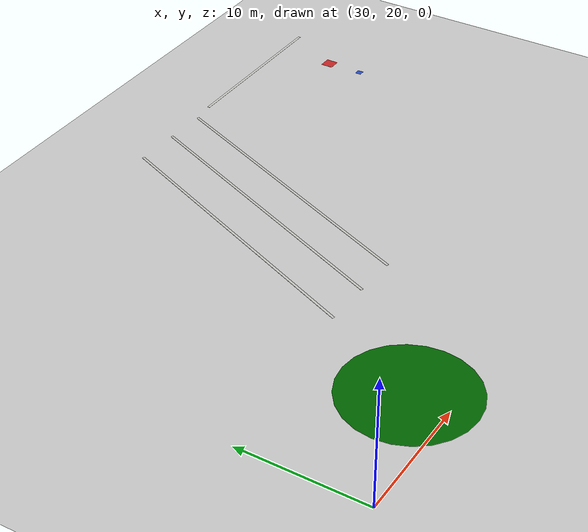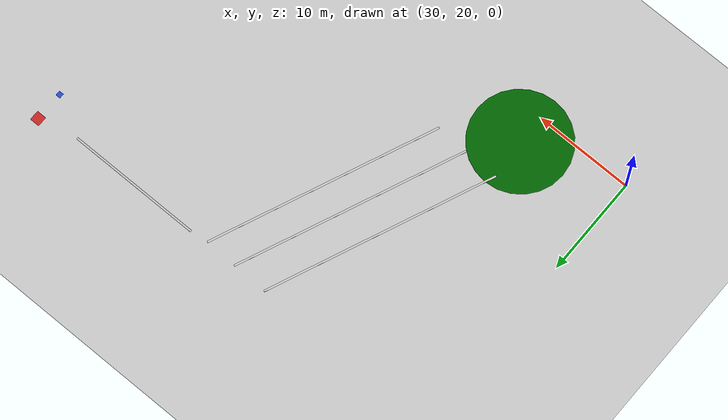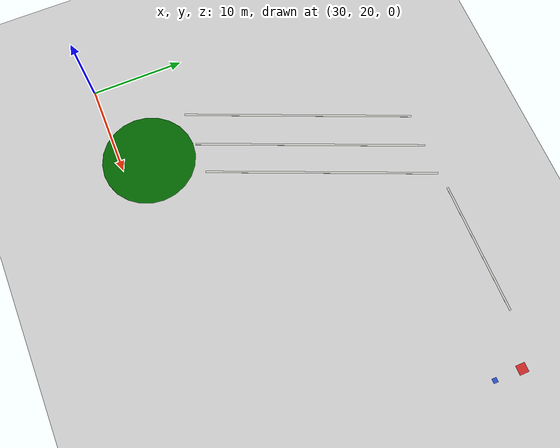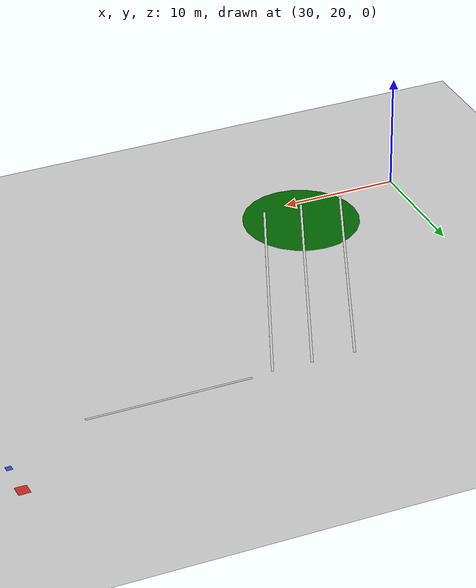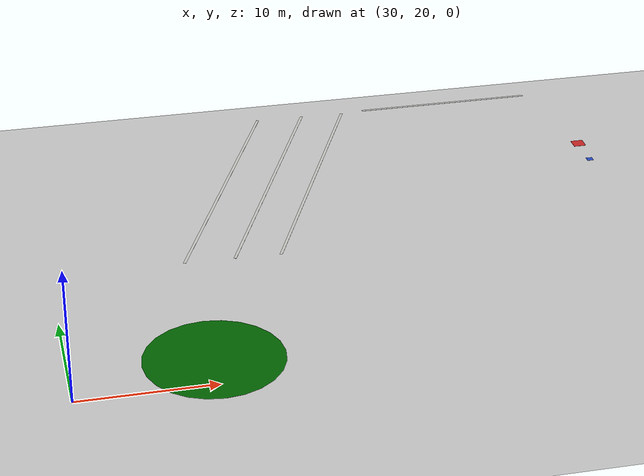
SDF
<sdf version="1.6">
 <world name="default">
  <model name="ground_plane">
   <static>1</static>
   <link name="link">
    <collision name="collision">
     <geometry><plane><normal>0 0 1</normal><size>100 100</size></plane></geometry>
     <surface><friction><ode><mu>100</mu><mu2>50</mu2></ode></friction></surface>
    </collision>
    <visual name="visual">
     <cast_shadows>0</cast_shadows>
     <geometry><plane><normal>0 0 1</normal><size>100 100</size></plane></geometry>
     <material>
      <script><uri>file://media/materials/scripts/gazebo.material</uri><name>Gazebo/Grey</name></script>
     </material>
    </visual>
   </link>
  </model>
  <model name="my_objecteg2w3">
   <link name="my_box">
    <inertial>
     <mass>1</mass>
     <inertia><ixx>1</ixx><ixy>0</ixy><ixz>0</ixz><iyy>100</iyy><iyz>0</iyz><izz>1</izz></inertia>
    </inertial>
    <collision name="my_box_collision"><geometry><box><size>1 1 0.01</size></box></geometry></collision>
    <visual name="my_box_visual">
     <geometry><box><size>1 1 0.01</size></box></geometry>
     <material>
      <script><name>Gazebo/Red</name><uri>file://media/materials/scripts/gazebo.material</uri></script>
     </material>
    </visual>
   </link>
   <pose>75.0015 49.4951 0.104998 -4e-06 0 0.00052</pose>
  </model>
  <model name="my_objectg5w3">
   <link name="my_box">
    <inertial>
     <mass>1</mass>
     <inertia><ixx>1</ixx><ixy>0</ixy><ixz>0</ixz><iyy>100</iyy><iyz>0</iyz><izz>1</izz></inertia>
    </inertial>
    <collision name="my_box_collision"><geometry><box><size>0.5 0.5 0.01</size></box></geometry></collision>
    <visual name="my_box_visual">
     <geometry><box><size>0.5 0.5 0.01</size></box></geometry>
     <material>
      <script><name>Gazebo/Blue</name><uri>file://media/materials/scripts/gazebo.material</uri></script>
     </material>
    </visual>
   </link>
   <pose>74.993 46.5121 0.104966 1e-06 0 -0.000571</pose>
  </model>
  <model name="356_0">
   <link name="Wall_14">
    <pose>0 0 0 0 -0 1.17162</pose>
    <gravity>0</gravity>
    <inertial>
     <mass>1</mass>
     <inertia><ixx>1</ixx><ixy>0</ixy><ixz>0</ixz><iyy>1</iyy><iyz>0</iyz><izz>1</izz></inertia>
    </inertial>
    <visual name="Wall_14_Visual">
     <pose>0 0 5 0 -0 0</pose>
     <geometry><box><size>23.2878 0.2 0.01</size></box></geometry>
     <material>
      <script><uri>file://media/materials/scripts/gazebo.material</uri><name>Gazebo/CeilingTiled</name></script>
      <ambient>0.435 0.796 0.675 1</ambient>
      <diffuse>1 1 1 1</diffuse>
      <specular>0 0 0 1</specular>
      <emissive>1 1 0 1</emissive>
      <shader type="vertex"><normal_map>__default__</normal_map></shader>
     </material>
    </visual>
    <collision name="Wall_14_Collision">
     <pose>0 0 1.25 0 -0 0</pose>
     <geometry><box><size>23.2878 0.001 2.5</size></box></geometry>
     <surface>
      <friction>
       <ode><mu>1</mu><mu2>1</mu2><fdir1>0 0 0</fdir1><slip1>0</slip1><slip2>0</slip2></ode>
       <torsional>
        <coefficient>1</coefficient>
        <patch_radius>0</patch_radius>
        <surface_radius>0</surface_radius>
        <use_patch_radius>1</use_patch_radius>
        <ode><slip>0</slip></ode>
       </torsional>
      </friction>
      <bounce><restitution_coefficient>0</restitution_coefficient><threshold>1e+06</threshold></bounce>
      <contact>
       <collide_without_contact>0</collide_without_contact>
       <collide_without_contact_bitmask>1</collide_without_contact_bitmask>
       <collide_bitmask>1</collide_bitmask>
       <ode>
        <soft_cfm>0</soft_cfm>
        <soft_erp>0.2</soft_erp>
        <kp>1e+13</kp>
        <kd>1</kd>
        <max_vel>0.01</max_vel>
        <min_depth>0</min_depth>
       </ode>
       <bullet>
        <split_impulse>1</split_impulse>
        <split_impulse_penetration_threshold>-0.01</split_impulse_penetration_threshold>
        <soft_cfm>0</soft_cfm>
        <soft_erp>0.2</soft_erp>
        <kp>1e+13</kp>
        <kd>1</kd>
       </bullet>
      </contact>
     </surface>
    </collision>
   </link>
   <static>1</static>
   <pose>43.4074 38.791 0 0 -0 0</pose>
  </model>
  <model name="358_clone_clone_0">
   <link name="Wall_18">
    <gravity>0</gravity>
    <inertial>
     <mass>1</mass>
     <inertia><ixx>1</ixx><ixy>0</ixy><ixz>0</ixz><iyy>1</iyy><iyz>0</iyz><izz>1</izz></inertia>
    </inertial>
    <visual name="Wall_18_Visual">
     <pose>0 0 5 0 -0 0</pose>
     <geometry><box><size>13.45 0.2 0.01</size></box></geometry>
     <material>
      <script><uri>file://media/materials/scripts/gazebo.material</uri><name>Gazebo/CeilingTiled</name></script>
      <ambient>0.435 0.796 0.675 1</ambient>
      <diffuse>1 1 1 1</diffuse>
      <specular>0 0 0 1</specular>
      <emissive>1 1 0 1</emissive>
      <shader type="vertex"><normal_map>__default__</normal_map></shader>
     </material>
    </visual>
    <collision name="Wall_18_Collision">
     <pose>0 0 1.25 0 -0 0</pose>
     <geometry><box><size>13.45 0.001 2.5</size></box></geometry>
     <surface>
      <friction>
       <ode><mu>1</mu><mu2>1</mu2><fdir1>0 0 0</fdir1><slip1>0</slip1><slip2>0</slip2></ode>
       <torsional>
        <coefficient>1</coefficient>
        <patch_radius>0</patch_radius>
        <surface_radius>0</surface_radius>
        <use_patch_radius>1</use_patch_radius>
        <ode><slip>0</slip></ode>
       </torsional>
      </friction>
      <bounce><restitution_coefficient>0</restitution_coefficient><threshold>1e+06</threshold></bounce>
      <contact>
       <collide_without_contact>0</collide_without_contact>
       <collide_without_contact_bitmask>1</collide_without_contact_bitmask>
       <collide_bitmask>1</collide_bitmask>
       <ode>
        <soft_cfm>0</soft_cfm>
        <soft_erp>0.2</soft_erp>
        <kp>1e+13</kp>
        <kd>1</kd>
        <max_vel>0.01</max_vel>
        <min_depth>0</min_depth>
       </ode>
       <bullet>
        <split_impulse>1</split_impulse>
        <split_impulse_penetration_threshold>-0.01</split_impulse_penetration_threshold>
        <soft_cfm>0</soft_cfm>
        <soft_erp>0.2</soft_erp>
        <kp>1e+13</kp>
        <kd>1</kd>
       </bullet>
      </contact>
     </surface>
    </collision>
   </link>
   <static>1</static>
   <pose>63.1809 49.5 0 0 -0 0</pose>
  </model>
  <model name="356_clone_0_0">
   <link name="Wall_14">
    <pose>0 0 0 0 -0 1.17162</pose>
    <inertial>
     <mass>1</mass>
     <inertia><ixx>1</ixx><ixy>0</ixy><ixz>0</ixz><iyy>1</iyy><iyz>0</iyz><izz>1</izz></inertia>
    </inertial>
    <gravity>0</gravity>
    <visual name="Wall_14_Visual">
     <pose>0 0 5 0 -0 0</pose>
     <geometry><box><size>23.2878 0.2 0.01</size></box></geometry>
     <material>
      <script><uri>file://media/materials/scripts/gazebo.material</uri><name>Gazebo/CeilingTiled</name></script>
      <ambient>0.435 0.796 0.675 1</ambient>
      <diffuse>1 1 1 1</diffuse>
      <specular>0 0 0 1</specular>
      <emissive>1 1 0 1</emissive>
      <shader type="vertex"><normal_map>__default__</normal_map></shader>
     </material>
    </visual>
    <collision name="Wall_14_Collision">
     <pose>0 0 1.25 0 -0 0</pose>
     <geometry><box><size>23.2878 0.001 2.5</size></box></geometry>
     <surface>
      <friction>
       <ode><mu>1</mu><mu2>1</mu2><fdir1>0 0 0</fdir1><slip1>0</slip1><slip2>0</slip2></ode>
       <torsional>
        <coefficient>1</coefficient>
        <patch_radius>0</patch_radius>
        <surface_radius>0</surface_radius>
        <use_patch_radius>1</use_patch_radius>
        <ode><slip>0</slip></ode>
       </torsional>
      </friction>
      <bounce><restitution_coefficient>0</restitution_coefficient><threshold>1e+06</threshold></bounce>
      <contact>
       <collide_without_contact>0</collide_without_contact>
       <collide_without_contact_bitmask>1</collide_without_contact_bitmask>
       <collide_bitmask>1</collide_bitmask>
       <ode>
        <soft_cfm>0</soft_cfm>
        <soft_erp>0.2</soft_erp>
        <kp>1e+13</kp>
        <kd>1</kd>
        <max_vel>0.01</max_vel>
        <min_depth>0</min_depth>
       </ode>
       <bullet>
        <split_impulse>1</split_impulse>
        <split_impulse_penetration_threshold>-0.01</split_impulse_penetration_threshold>
        <soft_cfm>0</soft_cfm>
        <soft_erp>0.2</soft_erp>
        <kp>1e+13</kp>
        <kd>1</kd>
       </bullet>
      </contact>
     </surface>
    </collision>
   </link>
   <static>1</static>
   <pose>46.9426 38.7153 0 0 -0 0</pose>
  </model>
  <model name="356_clone_clone_0_0">
   <link name="Wall_14">
    <pose>0 0 0 0 -0 1.17162</pose>
    <inertial>
     <mass>1</mass>
     <inertia><ixx>1</ixx><ixy>0</ixy><ixz>0</ixz><iyy>1</iyy><iyz>0</iyz><izz>1</izz></inertia>
    </inertial>
    <gravity>0</gravity>
    <visual name="Wall_14_Visual">
     <pose>0 0 5 0 -0 0</pose>
     <geometry><box><size>23.2878 0.2 0.01</size></box></geometry>
     <material>
      <script><uri>file://media/materials/scripts/gazebo.material</uri><name>Gazebo/CeilingTiled</name></script>
      <ambient>0.435 0.796 0.675 1</ambient>
      <diffuse>1 1 1 1</diffuse>
      <specular>0 0 0 1</specular>
      <emissive>1 1 0 1</emissive>
      <shader type="vertex"><normal_map>__default__</normal_map></shader>
     </material>
    </visual>
    <collision name="Wall_14_Collision">
     <pose>0 0 1.25 0 -0 0</pose>
     <geometry><box><size>23.2878 0.001 2.5</size></box></geometry>
     <surface>
      <friction>
       <ode><mu>1</mu><mu2>1</mu2><fdir1>0 0 0</fdir1><slip1>0</slip1><slip2>0</slip2></ode>
       <torsional>
        <coefficient>1</coefficient>
        <patch_radius>0</patch_radius>
        <surface_radius>0</surface_radius>
        <use_patch_radius>1</use_patch_radius>
        <ode><slip>0</slip></ode>
       </torsional>
      </friction>
      <bounce><restitution_coefficient>0</restitution_coefficient><threshold>1e+06</threshold></bounce>
      <contact>
       <collide_without_contact>0</collide_without_contact>
       <collide_without_contact_bitmask>1</collide_without_contact_bitmask>
       <collide_bitmask>1</collide_bitmask>
       <ode>
        <soft_cfm>0</soft_cfm>
        <soft_erp>0.2</soft_erp>
        <kp>1e+13</kp>
        <kd>1</kd>
        <max_vel>0.01</max_vel>
        <min_depth>0</min_depth>
       </ode>
       <bullet>
        <split_impulse>1</split_impulse>
        <split_impulse_penetration_threshold>-0.01</split_impulse_penetration_threshold>
        <soft_cfm>0</soft_cfm>
        <soft_erp>0.2</soft_erp>
        <kp>1e+13</kp>
        <kd>1</kd>
       </bullet>
      </contact>
     </surface>
    </collision>
   </link>
   <static>1</static>
   <pose>50.1871 38.5958 0 0 -0 0</pose>
  </model>
  <model name="unit_cylinder_0_3">
   <link name="link">
    <inertial>
     <mass>1</mass>
     <inertia><ixx>0.145833</ixx><ixy>0</ixy><ixz>0</ixz><iyy>0.145833</iyy><iyz>0</iyz><izz>0.125</izz></inertia>
    </inertial>
    <gravity>0</gravity>
    <visual name="visual">
     <geometry><cylinder><radius>5</radius><length>0.01</length></cylinder></geometry>
     <material>
      <script><name>Gazebo/Grey</name><uri>file://media/materials/scripts/gazebo.material</uri></script>
      <ambient>0 0.4 0 0</ambient>
      <diffuse>0 0.4 0 0</diffuse>
      <specular>0 0.41 0 0</specular>
      <emissive>0 0.4 0 0</emissive>
      <shader type="vertex"><normal_map>__default__</normal_map></shader>
     </material>
    </visual>
   </link>
   <static>0</static>
   <pose>39.9922 22.9648 0.2 0 -0 0</pose>
  </model>
 </world>
</sdf>
